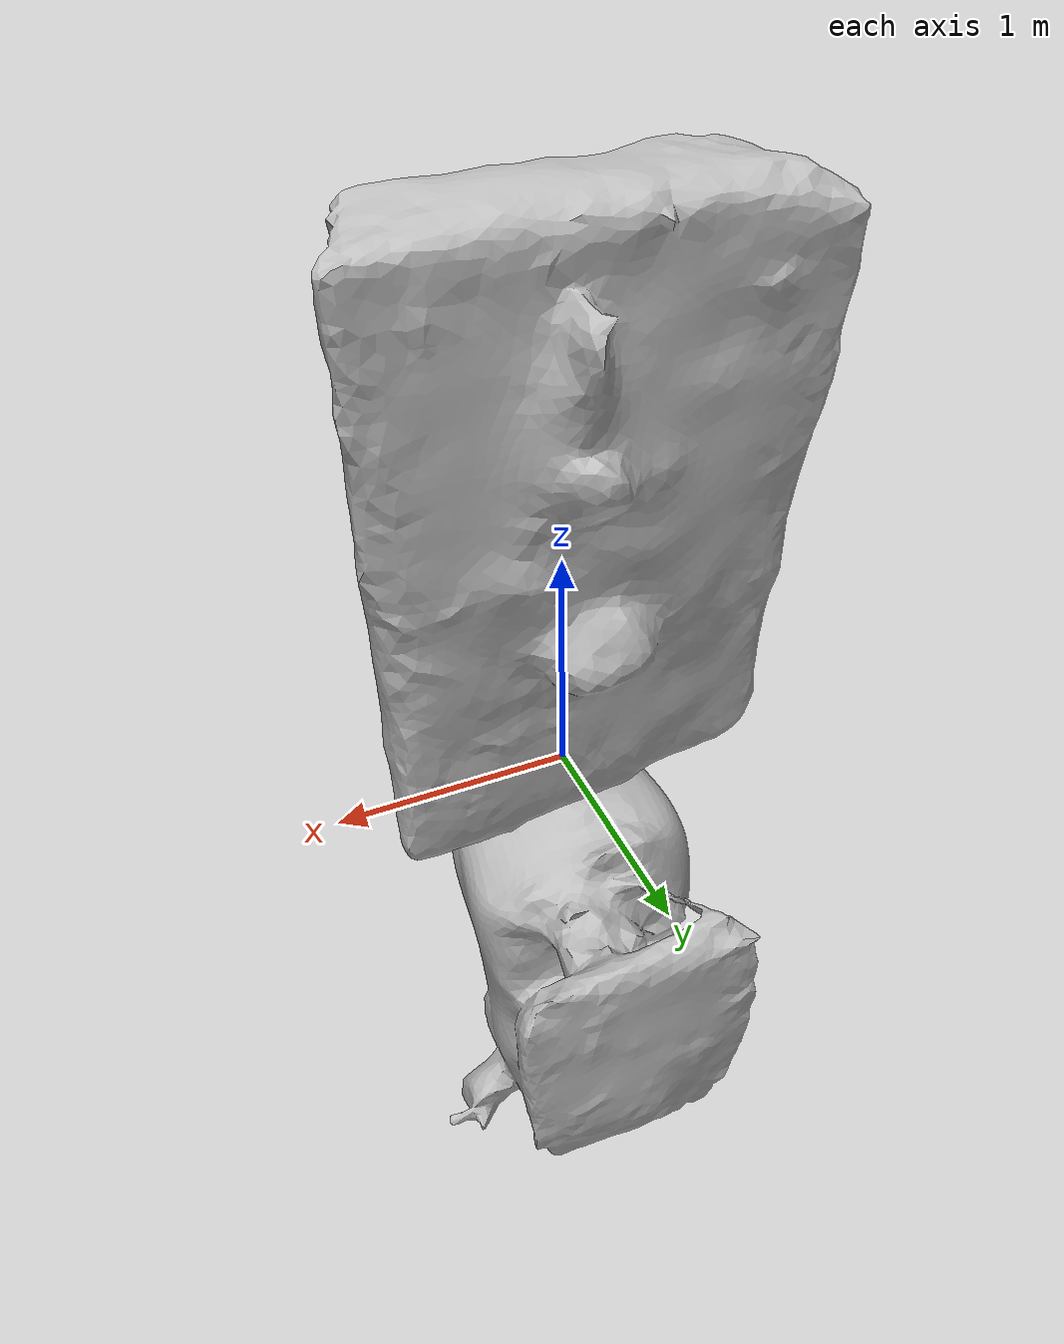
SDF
<?xml version="1.0" ?>
<sdf version="1.6">
  <model name="kare-truck">
    <static>true</static>
    <link name="link">
      <collision name="collision">
        <geometry>
          <mesh>
            <scale>5 5 5</scale>
            <uri>model://kare-truck/meshes/kare-truck.obj</uri>
          </mesh>
        </geometry>
      </collision>
      <visual name="visual">
        <geometry>
          <mesh>
            <scale>5 5 5</scale>
            <uri>model://kare-truck/meshes/kare-truck.obj</uri>
          </mesh>
        </geometry>
      </visual>
    </link>
  </model>
</sdf>
